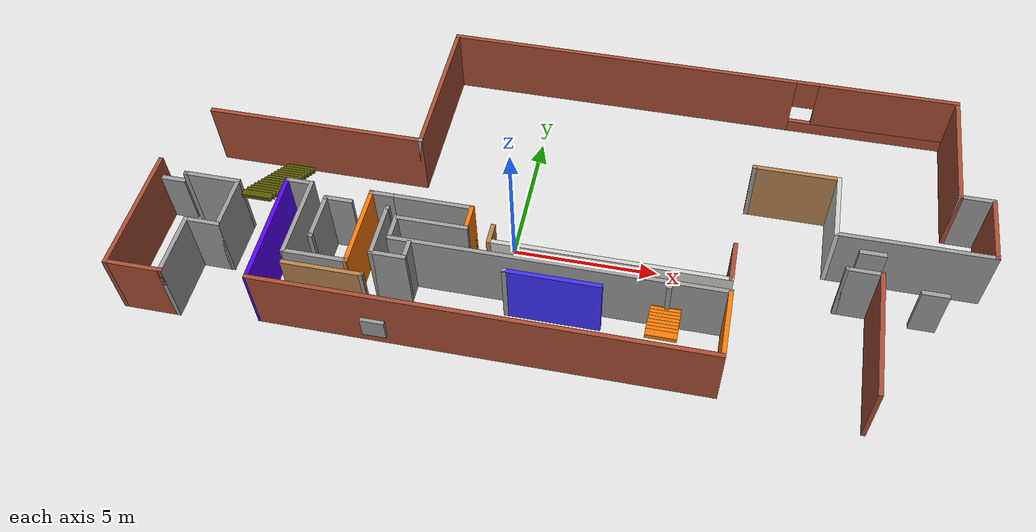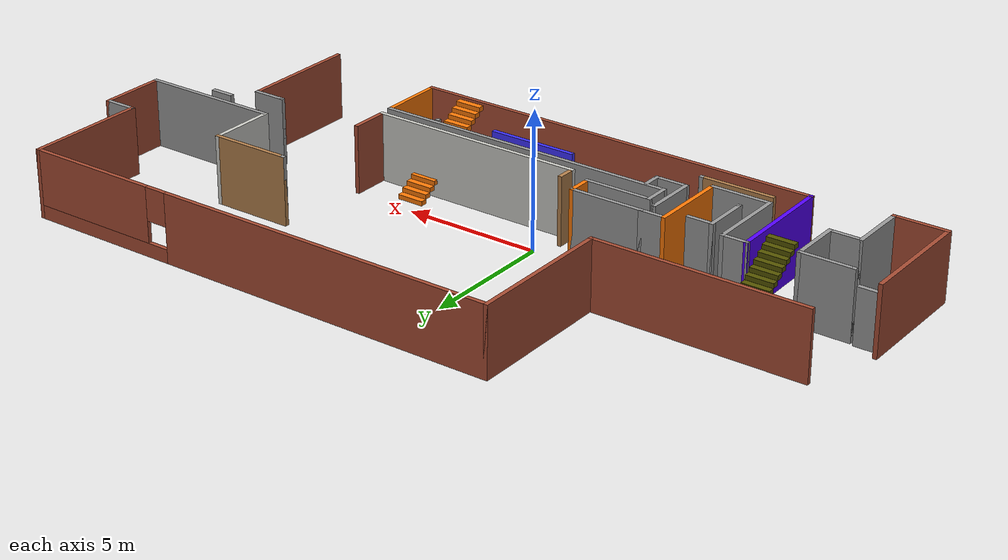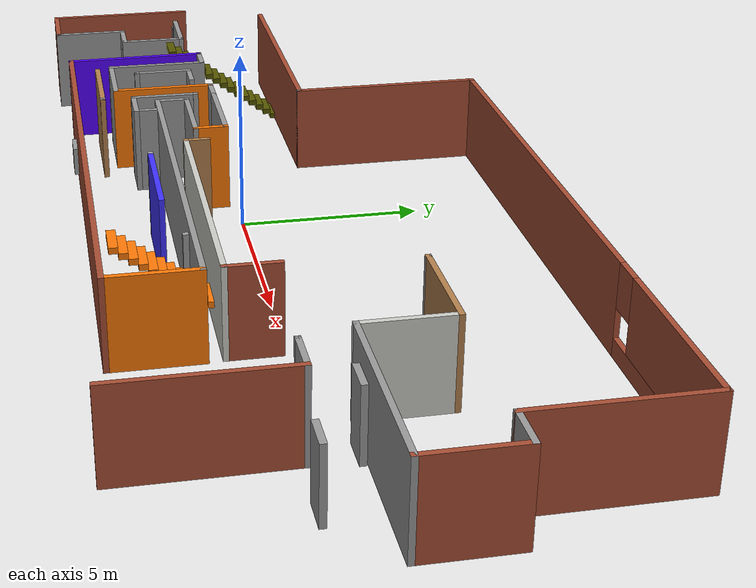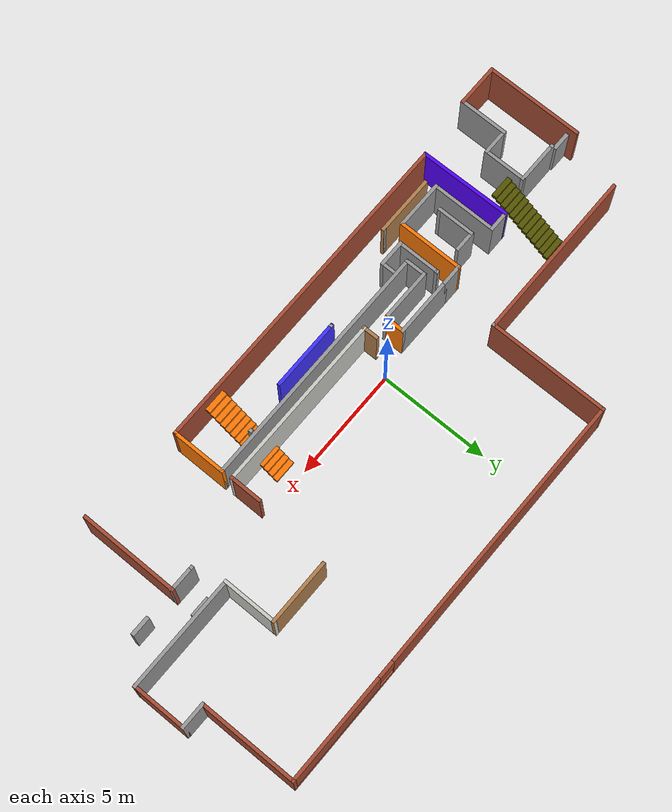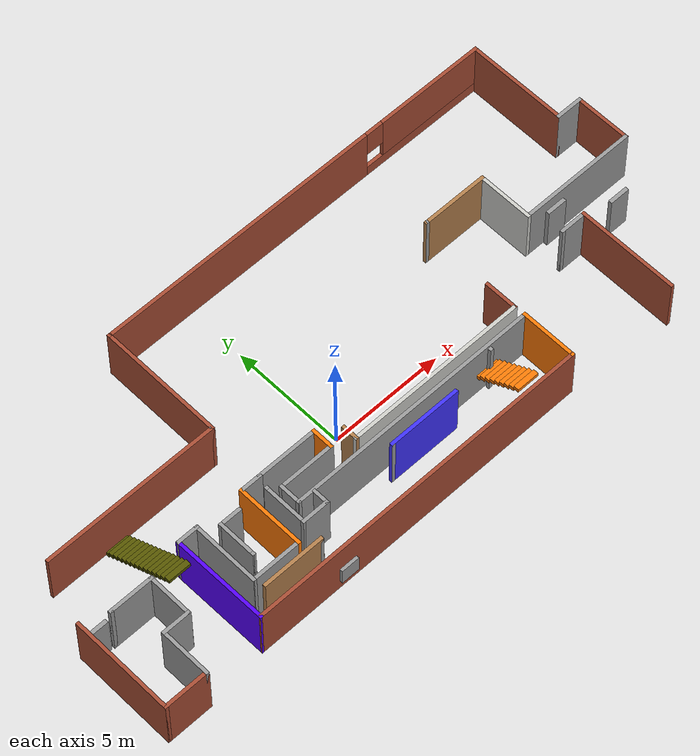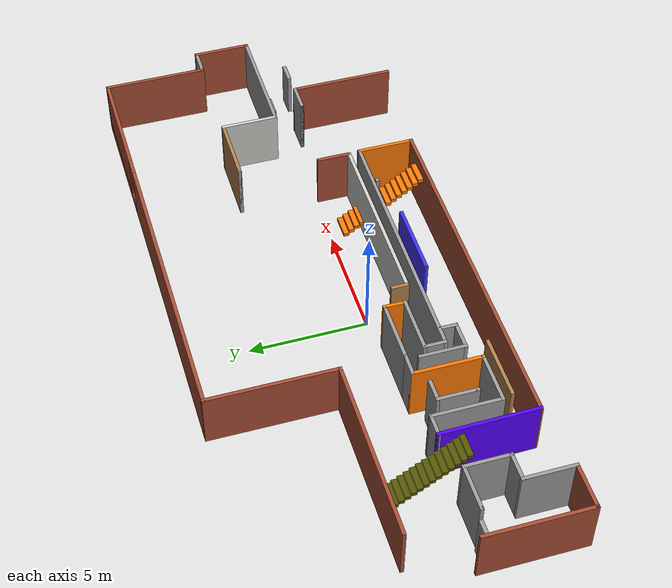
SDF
<sdf version="1.6">
 <model name="model">
  <pose>1.70279 1.4546 0 0 -0 0</pose>
  <link name="Door_2">
   <collision name="Door_2_Collision">
    <geometry><box><size>0.9 0.17 2</size></box></geometry>
    <pose>0 0 1 0 -0 0</pose>
   </collision>
   <visual name="Door_2_Visual">
    <pose>0 0 1 0 -0 0</pose>
    <geometry><box><size>0.9 0.17 2</size></box></geometry>
    <material>
     <script><uri>file://media/materials/scripts/gazebo.material</uri><name>Gazebo/Grey</name></script>
    </material>
   </visual>
   <pose>10.1664 -0.686476 0 0 -0 0</pose>
  </link>
  <link name="Door_3">
   <collision name="Door_3_Collision">
    <geometry><box><size>0.9 0.17 2</size></box></geometry>
    <pose>0 0 1 0 -0 0</pose>
   </collision>
   <visual name="Door_3_Visual">
    <pose>0 0 1 0 -0 0</pose>
    <geometry><box><size>0.9 0.17 2</size></box></geometry>
    <material>
     <script><uri>file://media/materials/scripts/gazebo.material</uri><name>Gazebo/Grey</name></script>
    </material>
   </visual>
   <pose>-13.5001 -2.06196 0 0 -0 0</pose>
  </link>
  <link name="Door_4">
   <collision name="Door_4_Collision">
    <geometry><box><size>0.9 0.17 2</size></box></geometry>
    <pose>0 0 1 0 -0 0</pose>
   </collision>
   <visual name="Door_4_Visual">
    <pose>0 0 1 0 -0 0</pose>
    <geometry><box><size>0.9 0.17 2</size></box></geometry>
    <material>
     <script><uri>file://media/materials/scripts/gazebo.material</uri><name>Gazebo/Grey</name></script>
    </material>
   </visual>
   <pose>12.1488 -1.9406 0 0 -0 0</pose>
  </link>
  <link name="Stairs_1">
   <visual name="Stairs_1_Visual_0">
    <pose>3.79721 -2.12127 0.083333 0 -0 0</pose>
    <geometry><box><size>1 0.233333 0.166667</size></box></geometry>
    <material>
     <script><uri>file://media/materials/scripts/gazebo.material</uri><name>Gazebo/Grey</name></script>
     <ambient>0.996078 0.47451 0.0196078 1</ambient>
    </material>
    <meta><layer>0</layer></meta>
   </visual>
   <collision name="Stairs_1_Collision_0">
    <geometry><box><size>1 0.233333 0.166667</size></box></geometry>
    <pose>3.79721 -2.12127 0.083333 0 -0 0</pose>
   </collision>
   <visual name="Stairs_1_Visual_1">
    <pose>3.79721 -2.3546 0.25 0 -0 0</pose>
    <geometry><box><size>1 0.233333 0.166667</size></box></geometry>
    <material>
     <script><uri>file://media/materials/scripts/gazebo.material</uri><name>Gazebo/Grey</name></script>
     <ambient>0.996078 0.47451 0.0196078 1</ambient>
    </material>
    <meta><layer>0</layer></meta>
   </visual>
   <collision name="Stairs_1_Collision_1">
    <geometry><box><size>1 0.233333 0.166667</size></box></geometry>
    <pose>3.79721 -2.3546 0.25 0 -0 0</pose>
   </collision>
   <visual name="Stairs_1_Visual_2">
    <pose>3.79721 -2.58793 0.416667 0 -0 0</pose>
    <geometry><box><size>1 0.233333 0.166667</size></box></geometry>
    <material>
     <script><uri>file://media/materials/scripts/gazebo.material</uri><name>Gazebo/Grey</name></script>
     <ambient>0.996078 0.47451 0.0196078 1</ambient>
    </material>
    <meta><layer>0</layer></meta>
   </visual>
   <collision name="Stairs_1_Collision_2">
    <geometry><box><size>1 0.233333 0.166667</size></box></geometry>
    <pose>3.79721 -2.58793 0.416667 0 -0 0</pose>
   </collision>
   <visual name="Stairs_1_Visual_3">
    <pose>3.79721 -2.82127 0.583333 0 -0 0</pose>
    <geometry><box><size>1 0.233333 0.166667</size></box></geometry>
    <material>
     <script><uri>file://media/materials/scripts/gazebo.material</uri><name>Gazebo/Grey</name></script>
     <ambient>0.996078 0.47451 0.0196078 1</ambient>
    </material>
    <meta><layer>0</layer></meta>
   </visual>
   <collision name="Stairs_1_Collision_3">
    <geometry><box><size>1 0.233333 0.166667</size></box></geometry>
    <pose>3.79721 -2.82127 0.583333 0 -0 0</pose>
   </collision>
   <visual name="Stairs_1_Visual_4">
    <pose>3.79721 -3.0546 0.75 0 -0 0</pose>
    <geometry><box><size>1 0.233333 0.166667</size></box></geometry>
    <material>
     <script><uri>file://media/materials/scripts/gazebo.material</uri><name>Gazebo/Grey</name></script>
     <ambient>0.996078 0.47451 0.0196078 1</ambient>
    </material>
    <meta><layer>0</layer></meta>
   </visual>
   <collision name="Stairs_1_Collision_4">
    <geometry><box><size>1 0.233333 0.166667</size></box></geometry>
    <pose>3.79721 -3.0546 0.75 0 -0 0</pose>
   </collision>
   <visual name="Stairs_1_Visual_5">
    <pose>3.79721 -3.28793 0.916667 0 -0 0</pose>
    <geometry><box><size>1 0.233333 0.166667</size></box></geometry>
    <material>
     <script><uri>file://media/materials/scripts/gazebo.material</uri><name>Gazebo/Grey</name></script>
     <ambient>0.996078 0.47451 0.0196078 1</ambient>
    </material>
    <meta><layer>0</layer></meta>
   </visual>
   <collision name="Stairs_1_Collision_5">
    <geometry><box><size>1 0.233333 0.166667</size></box></geometry>
    <pose>3.79721 -3.28793 0.916667 0 -0 0</pose>
   </collision>
   <visual name="Stairs_1_Visual_6">
    <pose>3.79721 -3.52127 1.08333 0 -0 0</pose>
    <geometry><box><size>1 0.233333 0.166667</size></box></geometry>
    <material>
     <script><uri>file://media/materials/scripts/gazebo.material</uri><name>Gazebo/Grey</name></script>
     <ambient>0.996078 0.47451 0.0196078 1</ambient>
    </material>
    <meta><layer>0</layer></meta>
   </visual>
   <collision name="Stairs_1_Collision_6">
    <geometry><box><size>1 0.233333 0.166667</size></box></geometry>
    <pose>3.79721 -3.52127 1.08333 0 -0 0</pose>
   </collision>
   <visual name="Stairs_1_Visual_7">
    <pose>3.79721 -3.7546 1.25 0 -0 0</pose>
    <geometry><box><size>1 0.233333 0.166667</size></box></geometry>
    <material>
     <script><uri>file://media/materials/scripts/gazebo.material</uri><name>Gazebo/Grey</name></script>
     <ambient>0.996078 0.47451 0.0196078 1</ambient>
    </material>
    <meta><layer>0</layer></meta>
   </visual>
   <collision name="Stairs_1_Collision_7">
    <geometry><box><size>1 0.233333 0.166667</size></box></geometry>
    <pose>3.79721 -3.7546 1.25 0 -0 0</pose>
   </collision>
   <visual name="Stairs_1_Visual_8">
    <pose>3.79721 -3.98793 1.41667 0 -0 0</pose>
    <geometry><box><size>1 0.233333 0.166667</size></box></geometry>
    <material>
     <script><uri>file://media/materials/scripts/gazebo.material</uri><name>Gazebo/Grey</name></script>
     <ambient>0.996078 0.47451 0.0196078 1</ambient>
    </material>
    <meta><layer>0</layer></meta>
   </visual>
   <collision name="Stairs_1_Collision_8">
    <geometry><box><size>1 0.233333 0.166667</size></box></geometry>
    <pose>3.79721 -3.98793 1.41667 0 -0 0</pose>
   </collision>
   <visual name="Stairs_1_Visual_9">
    <pose>3.79721 -4.22127 1.58333 0 -0 0</pose>
    <geometry><box><size>1 0.233333 0.166667</size></box></geometry>
    <material>
     <script><uri>file://media/materials/scripts/gazebo.material</uri><name>Gazebo/Grey</name></script>
     <ambient>0.996078 0.47451 0.0196078 1</ambient>
    </material>
    <meta><layer>0</layer></meta>
   </visual>
   <collision name="Stairs_1_Collision_9">
    <geometry><box><size>1 0.233333 0.166667</size></box></geometry>
    <pose>3.79721 -4.22127 1.58333 0 -0 0</pose>
   </collision>
   <visual name="Stairs_1_Visual_10">
    <pose>3.79721 -4.4546 1.75 0 -0 0</pose>
    <geometry><box><size>1 0.233333 0.166667</size></box></geometry>
    <material>
     <script><uri>file://media/materials/scripts/gazebo.material</uri><name>Gazebo/Grey</name></script>
     <ambient>0.996078 0.47451 0.0196078 1</ambient>
    </material>
    <meta><layer>0</layer></meta>
   </visual>
   <collision name="Stairs_1_Collision_10">
    <geometry><box><size>1 0.233333 0.166667</size></box></geometry>
    <pose>3.79721 -4.4546 1.75 0 -0 0</pose>
   </collision>
   <visual name="Stairs_1_Visual_11">
    <pose>3.79721 -4.68793 1.91667 0 -0 0</pose>
    <geometry><box><size>1 0.233333 0.166667</size></box></geometry>
    <material>
     <script><uri>file://media/materials/scripts/gazebo.material</uri><name>Gazebo/Grey</name></script>
     <ambient>0.996078 0.47451 0.0196078 1</ambient>
    </material>
    <meta><layer>0</layer></meta>
   </visual>
   <collision name="Stairs_1_Collision_11">
    <geometry><box><size>1 0.233333 0.166667</size></box></geometry>
    <pose>3.79721 -4.68793 1.91667 0 -0 0</pose>
   </collision>
   <visual name="Stairs_1_Visual_12">
    <pose>3.79721 -4.92127 2.08333 0 -0 0</pose>
    <geometry><box><size>1 0.233333 0.166667</size></box></geometry>
    <material>
     <script><uri>file://media/materials/scripts/gazebo.material</uri><name>Gazebo/Grey</name></script>
     <ambient>0.996078 0.47451 0.0196078 1</ambient>
    </material>
    <meta><layer>0</layer></meta>
   </visual>
   <collision name="Stairs_1_Collision_12">
    <geometry><box><size>1 0.233333 0.166667</size></box></geometry>
    <pose>3.79721 -4.92127 2.08333 0 -0 0</pose>
   </collision>
   <visual name="Stairs_1_Visual_13">
    <pose>3.79721 -5.1546 2.25 0 -0 0</pose>
    <geometry><box><size>1 0.233333 0.166667</size></box></geometry>
    <material>
     <script><uri>file://media/materials/scripts/gazebo.material</uri><name>Gazebo/Grey</name></script>
     <ambient>0.996078 0.47451 0.0196078 1</ambient>
    </material>
    <meta><layer>0</layer></meta>
   </visual>
   <collision name="Stairs_1_Collision_13">
    <geometry><box><size>1 0.233333 0.166667</size></box></geometry>
    <pose>3.79721 -5.1546 2.25 0 -0 0</pose>
   </collision>
   <visual name="Stairs_1_Visual_14">
    <pose>3.79721 -5.38793 2.41667 0 -0 0</pose>
    <geometry><box><size>1 0.233333 0.166667</size></box></geometry>
    <material>
     <script><uri>file://media/materials/scripts/gazebo.material</uri><name>Gazebo/Grey</name></script>
     <ambient>0.996078 0.47451 0.0196078 1</ambient>
    </material>
    <meta><layer>0</layer></meta>
   </visual>
   <collision name="Stairs_1_Collision_14">
    <geometry><box><size>1 0.233333 0.166667</size></box></geometry>
    <pose>3.79721 -5.38793 2.41667 0 -0 0</pose>
   </collision>
  </link>
  <link name="Stairs_2">
   <visual name="Stairs_2_Visual_0">
    <pose>-10.1827 0.74458 0.083333 0 -0 0</pose>
    <geometry><box><size>1 0.233333 0.166667</size></box></geometry>
    <material>
     <script><uri>file://media/materials/scripts/gazebo.material</uri><name>Gazebo/Grey</name></script>
     <ambient>0.333333 0.333333 0 1</ambient>
    </material>
    <meta><layer>0</layer></meta>
   </visual>
   <collision name="Stairs_2_Collision_0">
    <geometry><box><size>1 0.233333 0.166667</size></box></geometry>
    <pose>-10.1827 0.74458 0.083333 0 -0 0</pose>
   </collision>
   <visual name="Stairs_2_Visual_1">
    <pose>-10.1827 0.511247 0.25 0 -0 0</pose>
    <geometry><box><size>1 0.233333 0.166667</size></box></geometry>
    <material>
     <script><uri>file://media/materials/scripts/gazebo.material</uri><name>Gazebo/Grey</name></script>
     <ambient>0.333333 0.333333 0 1</ambient>
    </material>
    <meta><layer>0</layer></meta>
   </visual>
   <collision name="Stairs_2_Collision_1">
    <geometry><box><size>1 0.233333 0.166667</size></box></geometry>
    <pose>-10.1827 0.511247 0.25 0 -0 0</pose>
   </collision>
   <visual name="Stairs_2_Visual_2">
    <pose>-10.1827 0.277913 0.416667 0 -0 0</pose>
    <geometry><box><size>1 0.233333 0.166667</size></box></geometry>
    <material>
     <script><uri>file://media/materials/scripts/gazebo.material</uri><name>Gazebo/Grey</name></script>
     <ambient>0.333333 0.333333 0 1</ambient>
    </material>
    <meta><layer>0</layer></meta>
   </visual>
   <collision name="Stairs_2_Collision_2">
    <geometry><box><size>1 0.233333 0.166667</size></box></geometry>
    <pose>-10.1827 0.277913 0.416667 0 -0 0</pose>
   </collision>
   <visual name="Stairs_2_Visual_3">
    <pose>-10.1827 0.04458 0.583333 0 -0 0</pose>
    <geometry><box><size>1 0.233333 0.166667</size></box></geometry>
    <material>
     <script><uri>file://media/materials/scripts/gazebo.material</uri><name>Gazebo/Grey</name></script>
     <ambient>0.333333 0.333333 0 1</ambient>
    </material>
    <meta><layer>0</layer></meta>
   </visual>
   <collision name="Stairs_2_Collision_3">
    <geometry><box><size>1 0.233333 0.166667</size></box></geometry>
    <pose>-10.1827 0.04458 0.583333 0 -0 0</pose>
   </collision>
   <visual name="Stairs_2_Visual_4">
    <pose>-10.1827 -0.188753 0.75 0 -0 0</pose>
    <geometry><box><size>1 0.233333 0.166667</size></box></geometry>
    <material>
     <script><uri>file://media/materials/scripts/gazebo.material</uri><name>Gazebo/Grey</name></script>
     <ambient>0.333333 0.333333 0 1</ambient>
    </material>
    <meta><layer>0</layer></meta>
   </visual>
   <collision name="Stairs_2_Collision_4">
    <geometry><box><size>1 0.233333 0.166667</size></box></geometry>
    <pose>-10.1827 -0.188753 0.75 0 -0 0</pose>
   </collision>
   <visual name="Stairs_2_Visual_5">
    <pose>-10.1827 -0.422087 0.916667 0 -0 0</pose>
    <geometry><box><size>1 0.233333 0.166667</size></box></geometry>
    <material>
     <script><uri>file://media/materials/scripts/gazebo.material</uri><name>Gazebo/Grey</name></script>
     <ambient>0.333333 0.333333 0 1</ambient>
    </material>
    <meta><layer>0</layer></meta>
   </visual>
   <collision name="Stairs_2_Collision_5">
    <geometry><box><size>1 0.233333 0.166667</size></box></geometry>
    <pose>-10.1827 -0.422087 0.916667 0 -0 0</pose>
   </collision>
   <visual name="Stairs_2_Visual_6">
    <pose>-10.1827 -0.65542 1.08333 0 -0 0</pose>
    <geometry><box><size>1 0.233333 0.166667</size></box></geometry>
    <material>
     <script><uri>file://media/materials/scripts/gazebo.material</uri><name>Gazebo/Grey</name></script>
     <ambient>0.333333 0.333333 0 1</ambient>
    </material>
    <meta><layer>0</layer></meta>
   </visual>
   <collision name="Stairs_2_Collision_6">
    <geometry><box><size>1 0.233333 0.166667</size></box></geometry>
    <pose>-10.1827 -0.65542 1.08333 0 -0 0</pose>
   </collision>
   <visual name="Stairs_2_Visual_7">
    <pose>-10.1827 -0.888753 1.25 0 -0 0</pose>
    <geometry><box><size>1 0.233333 0.166667</size></box></geometry>
    <material>
     <script><uri>file://media/materials/scripts/gazebo.material</uri><name>Gazebo/Grey</name></script>
     <ambient>0.333333 0.333333 0 1</ambient>
    </material>
    <meta><layer>0</layer></meta>
   </visual>
   <collision name="Stairs_2_Collision_7">
    <geometry><box><size>1 0.233333 0.166667</size></box></geometry>
    <pose>-10.1827 -0.888753 1.25 0 -0 0</pose>
   </collision>
   <visual name="Stairs_2_Visual_8">
    <pose>-10.1827 -1.12209 1.41667 0 -0 0</pose>
    <geometry><box><size>1 0.233333 0.166667</size></box></geometry>
    <material>
     <script><uri>file://media/materials/scripts/gazebo.material</uri><name>Gazebo/Grey</name></script>
     <ambient>0.333333 0.333333 0 1</ambient>
    </material>
    <meta><layer>0</layer></meta>
   </visual>
   <collision name="Stairs_2_Collision_8">
    <geometry><box><size>1 0.233333 0.166667</size></box></geometry>
    <pose>-10.1827 -1.12209 1.41667 0 -0 0</pose>
   </collision>
   <visual name="Stairs_2_Visual_9">
    <pose>-10.1827 -1.35542 1.58333 0 -0 0</pose>
    <geometry><box><size>1 0.233333 0.166667</size></box></geometry>
    <material>
     <script><uri>file://media/materials/scripts/gazebo.material</uri><name>Gazebo/Grey</name></script>
     <ambient>0.333333 0.333333 0 1</ambient>
    </material>
    <meta><layer>0</layer></meta>
   </visual>
   <collision name="Stairs_2_Collision_9">
    <geometry><box><size>1 0.233333 0.166667</size></box></geometry>
    <pose>-10.1827 -1.35542 1.58333 0 -0 0</pose>
   </collision>
   <visual name="Stairs_2_Visual_10">
    <pose>-10.1827 -1.58875 1.75 0 -0 0</pose>
    <geometry><box><size>1 0.233333 0.166667</size></box></geometry>
    <material>
     <script><uri>file://media/materials/scripts/gazebo.material</uri><name>Gazebo/Grey</name></script>
     <ambient>0.333333 0.333333 0 1</ambient>
    </material>
    <meta><layer>0</layer></meta>
   </visual>
   <collision name="Stairs_2_Collision_10">
    <geometry><box><size>1 0.233333 0.166667</size></box></geometry>
    <pose>-10.1827 -1.58875 1.75 0 -0 0</pose>
   </collision>
   <visual name="Stairs_2_Visual_11">
    <pose>-10.1827 -1.82209 1.91667 0 -0 0</pose>
    <geometry><box><size>1 0.233333 0.166667</size></box></geometry>
    <material>
     <script><uri>file://media/materials/scripts/gazebo.material</uri><name>Gazebo/Grey</name></script>
     <ambient>0.333333 0.333333 0 1</ambient>
    </material>
    <meta><layer>0</layer></meta>
   </visual>
   <collision name="Stairs_2_Collision_11">
    <geometry><box><size>1 0.233333 0.166667</size></box></geometry>
    <pose>-10.1827 -1.82209 1.91667 0 -0 0</pose>
   </collision>
   <visual name="Stairs_2_Visual_12">
    <pose>-10.1827 -2.05542 2.08333 0 -0 0</pose>
    <geometry><box><size>1 0.233333 0.166667</size></box></geometry>
    <material>
     <script><uri>file://media/materials/scripts/gazebo.material</uri><name>Gazebo/Grey</name></script>
     <ambient>0.333333 0.333333 0 1</ambient>
    </material>
    <meta><layer>0</layer></meta>
   </visual>
   <collision name="Stairs_2_Collision_12">
    <geometry><box><size>1 0.233333 0.166667</size></box></geometry>
    <pose>-10.1827 -2.05542 2.08333 0 -0 0</pose>
   </collision>
   <visual name="Stairs_2_Visual_13">
    <pose>-10.1827 -2.28875 2.25 0 -0 0</pose>
    <geometry><box><size>1 0.233333 0.166667</size></box></geometry>
    <material>
     <script><uri>file://media/materials/scripts/gazebo.material</uri><name>Gazebo/Grey</name></script>
     <ambient>0.333333 0.333333 0 1</ambient>
    </material>
    <meta><layer>0</layer></meta>
   </visual>
   <collision name="Stairs_2_Collision_13">
    <geometry><box><size>1 0.233333 0.166667</size></box></geometry>
    <pose>-10.1827 -2.28875 2.25 0 -0 0</pose>
   </collision>
   <visual name="Stairs_2_Visual_14">
    <pose>-10.1827 -2.52209 2.41667 0 -0 0</pose>
    <geometry><box><size>1 0.233333 0.166667</size></box></geometry>
    <material>
     <script><uri>file://media/materials/scripts/gazebo.material</uri><name>Gazebo/Grey</name></script>
     <ambient>0.333333 0.333333 0 1</ambient>
    </material>
    <meta><layer>0</layer></meta>
   </visual>
   <collision name="Stairs_2_Collision_14">
    <geometry><box><size>1 0.233333 0.166667</size></box></geometry>
    <pose>-10.1827 -2.52209 2.41667 0 -0 0</pose>
   </collision>
  </link>
  <link name="Wall_10">
   <collision name="Wall_10_Collision">
    <geometry><box><size>2.5 0.15 2.5</size></box></geometry>
    <pose>0 0 1.25 0 -0 0</pose>
   </collision>
   <visual name="Wall_10_Visual">
    <pose>0 0 1.25 0 -0 0</pose>
    <geometry><box><size>2.5 0.15 2.5</size></box></geometry>
    <material>
     <script><uri>file://media/materials/scripts/gazebo.material</uri><name>Gazebo/Grey</name></script>
     <ambient>1 1 1 1</ambient>
    </material>
    <meta><layer>0</layer></meta>
   </visual>
   <pose>-4.18779 -2.5746 0 0 -0 3.14159</pose>
  </link>
  <link name="Wall_11">
   <collision name="Wall_11_Collision">
    <geometry><box><size>1 0.15 2.5</size></box></geometry>
    <pose>0 0 1.25 0 -0 0</pose>
   </collision>
   <visual name="Wall_11_Visual">
    <pose>0 0 1.25 0 -0 0</pose>
    <geometry><box><size>1 0.15 2.5</size></box></geometry>
    <material>
     <script><uri>file://media/materials/scripts/gazebo.material</uri><name>Gazebo/Grey</name></script>
     <ambient>1 1 1 1</ambient>
    </material>
    <meta><layer>0</layer></meta>
   </visual>
   <pose>-5.36279 -2.9996 0 0 0 -1.5708</pose>
  </link>
  <link name="Wall_12">
   <collision name="Wall_12_Collision">
    <geometry><box><size>11.25 0.15 2.5</size></box></geometry>
    <pose>0 0 1.25 0 -0 0</pose>
   </collision>
   <visual name="Wall_12_Visual">
    <pose>0 0 1.25 0 -0 0</pose>
    <geometry><box><size>11.25 0.15 2.5</size></box></geometry>
    <material>
     <script><uri>file://media/materials/scripts/gazebo.material</uri><name>Gazebo/Grey</name></script>
     <ambient>1 1 1 1</ambient>
    </material>
    <meta><layer>0</layer></meta>
   </visual>
   <pose>0.187206 -3.4246 0 0 -0 0</pose>
  </link>
  <link name="Wall_13">
   <collision name="Wall_13_Collision">
    <geometry><box><size>2.5 0.15 2.5</size></box></geometry>
    <pose>0 0 1.25 0 -0 0</pose>
   </collision>
   <visual name="Wall_13_Visual">
    <pose>0 0 1.25 0 -0 0</pose>
    <geometry><box><size>2.5 0.15 2.5</size></box></geometry>
    <material>
     <script><uri>file://media/materials/scripts/gazebo.material</uri><name>Gazebo/Grey</name></script>
     <ambient>0.996078 0.47451 0.0196078 1</ambient>
    </material>
    <meta><layer>0</layer></meta>
   </visual>
   <pose>5.73721 -4.5996 0 0 0 -1.5708</pose>
  </link>
  <link name="Wall_14">
   <collision name="Wall_14_Collision">
    <geometry><box><size>15.25 0.15 2.5</size></box></geometry>
    <pose>0 0 1.25 0 -0 0</pose>
   </collision>
   <visual name="Wall_14_Visual">
    <pose>0 0 1.25 0 -0 0</pose>
    <geometry><box><size>15.25 0.15 2.5</size></box></geometry>
    <material>
     <script><uri>file://media/materials/scripts/gazebo.material</uri><name>Gazebo/Bricks</name></script>
     <ambient>0.760784 0.662745 0.627451 1</ambient>
    </material>
    <meta><layer>0</layer></meta>
   </visual>
   <pose>-1.81279 -5.7746 0 0 -0 3.14159</pose>
  </link>
  <link name="Wall_15">
   <collision name="Wall_15_Collision">
    <geometry><box><size>4.20031 0.15 2.5</size></box></geometry>
    <pose>0 0 1.25 0 -0 0</pose>
   </collision>
   <visual name="Wall_15_Visual">
    <pose>0 0 1.25 0 -0 0</pose>
    <geometry><box><size>4.20031 0.15 2.5</size></box></geometry>
    <material>
     <script><uri>file://media/materials/scripts/gazebo.material</uri><name>Gazebo/Grey</name></script>
     <ambient>0.333333 0 1 1</ambient>
    </material>
    <meta><layer>0</layer></meta>
   </visual>
   <pose>-9.38779 -3.7496 0 0 -0 1.58314</pose>
  </link>
  <link name="Wall_16">
   <collision name="Wall_16_Collision">
    <geometry><box><size>0.15 0.15 2.5</size></box></geometry>
    <pose>0 0 1.25 0 -0 0</pose>
   </collision>
   <visual name="Wall_16_Visual">
    <pose>0 0 1.25 0 -0 0</pose>
    <geometry><box><size>0.15 0.15 2.5</size></box></geometry>
    <material>
     <script><uri>file://media/materials/scripts/gazebo.material</uri><name>Gazebo/Grey</name></script>
     <ambient>1 1 1 1</ambient>
    </material>
    <meta><layer>0</layer></meta>
   </visual>
   <pose>-9.41279 -1.7246 0 0 -0 0</pose>
  </link>
  <link name="Wall_18">
   <collision name="Wall_18_Collision">
    <geometry><box><size>0.15 0.15 2.5</size></box></geometry>
    <pose>0 0 1.25 0 -0 0</pose>
   </collision>
   <visual name="Wall_18_Visual">
    <pose>0 0 1.25 0 -0 0</pose>
    <geometry><box><size>0.15 0.15 2.5</size></box></geometry>
    <material>
     <script><uri>file://media/materials/scripts/gazebo.material</uri><name>Gazebo/Grey</name></script>
     <ambient>1 1 1 1</ambient>
    </material>
    <meta><layer>0</layer></meta>
   </visual>
   <pose>-3.01279 -1.7246 0 0 -0 0</pose>
  </link>
  <link name="Wall_20">
   <collision name="Wall_20_Collision">
    <geometry><box><size>1.5 0.15 2.5</size></box></geometry>
    <pose>0 0 1.25 0 -0 0</pose>
   </collision>
   <visual name="Wall_20_Visual">
    <pose>0 0 1.25 0 -0 0</pose>
    <geometry><box><size>1.5 0.15 2.5</size></box></geometry>
    <material>
     <script><uri>file://media/materials/scripts/gazebo.material</uri><name>Gazebo/Bricks</name></script>
     <ambient>1 1 1 1</ambient>
    </material>
    <meta><layer>0</layer></meta>
   </visual>
   <pose>5.69721 -2.2696 0 0 0 -1.5708</pose>
  </link>
  <link name="Wall_21">
   <collision name="Wall_21_Collision">
    <geometry><box><size>8 0.15 2.5</size></box></geometry>
    <pose>0 0 1.25 0 -0 0</pose>
   </collision>
   <visual name="Wall_21_Visual">
    <pose>0 0 1.25 0 -0 0</pose>
    <geometry><box><size>8 0.15 2.5</size></box></geometry>
    <material>
     <script><uri>file://media/materials/scripts/gazebo.material</uri><name>Gazebo/CeilingTiled</name></script>
     <ambient>0.435294 0.796078 0.67451 1</ambient>
    </material>
    <meta><layer>0</layer></meta>
   </visual>
   <pose>1.77221 -2.9446 0 0 -0 3.14159</pose>
  </link>
  <link name="Wall_22">
   <collision name="Wall_22_Collision">
    <geometry><box><size>0.75 0.15 2.5</size></box></geometry>
    <pose>0 0 1.25 0 -0 0</pose>
   </collision>
   <visual name="Wall_22_Visual">
    <pose>0 0 1.25 0 -0 0</pose>
    <geometry><box><size>0.75 0.15 2.5</size></box></geometry>
    <material>
     <script><uri>file://media/materials/scripts/gazebo.material</uri><name>Gazebo/Wood</name></script>
     <ambient>1 1 1 1</ambient>
    </material>
    <meta><layer>0</layer></meta>
   </visual>
   <pose>-2.15279 -2.6446 0 0 -0 1.5708</pose>
  </link>
  <link name="Wall_25">
   <collision name="Wall_25_Collision">
    <geometry><box><size>0.16 0.15 2.5</size></box></geometry>
    <pose>0 0 1.25 0 -0 0</pose>
   </collision>
   <visual name="Wall_25_Visual">
    <pose>0 0 1.25 0 -0 0</pose>
    <geometry><box><size>0.16 0.15 2.5</size></box></geometry>
    <material>
     <script><uri>file://media/materials/scripts/gazebo.material</uri><name>Gazebo/Grey</name></script>
     <ambient>1 1 1 1</ambient>
    </material>
    <meta><layer>0</layer></meta>
   </visual>
   <pose>3.8223 -3.6196 0 0 -0 0</pose>
  </link>
  <link name="Wall_27">
   <collision name="Wall_27_Collision">
    <geometry><box><size>1 0.15 2.5</size></box></geometry>
    <pose>0 0 1.25 0 -0 0</pose>
   </collision>
   <visual name="Wall_27_Visual">
    <pose>0 0 1.25 0 -0 0</pose>
    <geometry><box><size>1 0.15 2.5</size></box></geometry>
    <material>
     <script><uri>file://media/materials/scripts/gazebo.material</uri><name>Gazebo/Grey</name></script>
     <ambient>1 1 1 1</ambient>
    </material>
    <meta><layer>0</layer></meta>
   </visual>
   <pose>-7.46779 -2.2246 0 0 -0 3.14159</pose>
  </link>
  <link name="Wall_28">
   <collision name="Wall_28_Collision">
    <geometry><box><size>1.75 0.15 2.5</size></box></geometry>
    <pose>0 0 1.25 0 -0 0</pose>
   </collision>
   <visual name="Wall_28_Visual">
    <pose>0 0 1.25 0 -0 0</pose>
    <geometry><box><size>1.75 0.15 2.5</size></box></geometry>
    <material>
     <script><uri>file://media/materials/scripts/gazebo.material</uri><name>Gazebo/Grey</name></script>
     <ambient>1 1 1 1</ambient>
    </material>
    <meta><layer>0</layer></meta>
   </visual>
   <pose>-7.89279 -3.0246 0 0 0 -1.5708</pose>
  </link>
  <link name="Wall_29">
   <collision name="Wall_29_Collision">
    <geometry><box><size>0.15 0.15 2.5</size></box></geometry>
    <pose>0 0 1.25 0 -0 0</pose>
   </collision>
   <visual name="Wall_29_Visual">
    <pose>0 0 1.25 0 -0 0</pose>
    <geometry><box><size>0.15 0.15 2.5</size></box></geometry>
    <material>
     <script><uri>file://media/materials/scripts/gazebo.material</uri><name>Gazebo/Grey</name></script>
     <ambient>1 1 1 1</ambient>
    </material>
    <meta><layer>0</layer></meta>
   </visual>
   <pose>-7.89279 -3.8246 0 0 -0 0</pose>
  </link>
  <link name="Wall_3">
   <collision name="Wall_3_Collision">
    <geometry><box><size>1 0.15 2.5</size></box></geometry>
    <pose>0 0 1.25 0 -0 0</pose>
   </collision>
   <visual name="Wall_3_Visual">
    <pose>0 0 1.25 0 -0 0</pose>
    <geometry><box><size>1 0.15 2.5</size></box></geometry>
    <material>
     <script><uri>file://media/materials/scripts/gazebo.material</uri><name>Gazebo/Grey</name></script>
     <ambient>1 1 1 1</ambient>
    </material>
    <meta><layer>0</layer></meta>
   </visual>
   <pose>-8.98779 -1.7246 0 0 -0 0</pose>
  </link>
  <link name="Wall_31">
   <collision name="Wall_31_Collision">
    <geometry><box><size>3.25 0.15 2.5</size></box></geometry>
    <pose>0 0 1.25 0 -0 0</pose>
   </collision>
   <visual name="Wall_31_Visual">
    <pose>0 0 1.25 0 -0 0</pose>
    <geometry><box><size>3.25 0.15 2.5</size></box></geometry>
    <material>
     <script><uri>file://media/materials/scripts/gazebo.material</uri><name>Gazebo/Grey</name></script>
     <ambient>0.243137 0.192157 1 1</ambient>
    </material>
    <meta><layer>0</layer></meta>
   </visual>
   <pose>0.137206 -3.9946 0 0 -0 3.14159</pose>
  </link>
  <link name="Wall_32">
   <collision name="Wall_32_Collision">
    <geometry><box><size>0.16 0.15 2.5</size></box></geometry>
    <pose>0 0 1.25 0 -0 0</pose>
   </collision>
   <visual name="Wall_32_Visual">
    <pose>0 0 1.25 0 -0 0</pose>
    <geometry><box><size>0.16 0.15 2.5</size></box></geometry>
    <material>
     <script><uri>file://media/materials/scripts/gazebo.material</uri><name>Gazebo/Grey</name></script>
     <ambient>1 1 1 1</ambient>
    </material>
    <meta><layer>0</layer></meta>
   </visual>
   <pose>-1.40779 -3.9946 0 0 -0 0</pose>
  </link>
  <link name="Wall_35">
   <collision name="Wall_35_Collision">
    <geometry><box><size>2.75 0.15 2.5</size></box></geometry>
    <pose>0 0 1.25 0 -0 0</pose>
   </collision>
   <visual name="Wall_35_Visual">
    <pose>0 0 1.25 0 -0 0</pose>
    <geometry><box><size>2.75 0.15 2.5</size></box></geometry>
    <material>
     <script><uri>file://media/materials/scripts/gazebo.material</uri><name>Gazebo/Wood</name></script>
     <ambient>1 1 1 1</ambient>
    </material>
    <meta><layer>0</layer></meta>
   </visual>
   <pose>-7.11279 -5.0046 0 0 -0 0</pose>
  </link>
  <link name="Wall_36">
   <collision name="Wall_36_Collision">
    <geometry><box><size>0.15 0.15 2.5</size></box></geometry>
    <pose>0 0 1.25 0 -0 0</pose>
   </collision>
   <visual name="Wall_36_Visual">
    <pose>0 0 1.25 0 -0 0</pose>
    <geometry><box><size>0.15 0.15 2.5</size></box></geometry>
    <material>
     <script><uri>file://media/materials/scripts/gazebo.material</uri><name>Gazebo/Grey</name></script>
     <ambient>1 1 1 1</ambient>
    </material>
    <meta><layer>0</layer></meta>
   </visual>
   <pose>-5.81279 -5.0046 0 0 -0 0</pose>
  </link>
  <link name="Wall_38">
   <collision name="Wall_38_Collision">
    <geometry><box><size>0.75 0.15 2.5</size></box></geometry>
    <pose>0 0 1.25 0 -0 0</pose>
   </collision>
   <visual name="Wall_38_Visual">
    <pose>0 0 1.25 0 -0 0</pose>
    <geometry><box><size>0.75 0.15 2.5</size></box></geometry>
    <material>
     <script><uri>file://media/materials/scripts/gazebo.material</uri><name>Gazebo/Grey</name></script>
     <ambient>1 1 1 1</ambient>
    </material>
    <meta><layer>0</layer></meta>
   </visual>
   <pose>-4.67279 -3.8046 0 0 0 -1.5708</pose>
  </link>
  <link name="Wall_39">
   <collision name="Wall_39_Collision">
    <geometry><box><size>1.25 0.15 2.5</size></box></geometry>
    <pose>0 0 1.25 0 -0 0</pose>
   </collision>
   <visual name="Wall_39_Visual">
    <pose>0 0 1.25 0 -0 0</pose>
    <geometry><box><size>1.25 0.15 2.5</size></box></geometry>
    <material>
     <script><uri>file://media/materials/scripts/gazebo.material</uri><name>Gazebo/Grey</name></script>
     <ambient>1 1 1 1</ambient>
    </material>
    <meta><layer>0</layer></meta>
   </visual>
   <pose>-5.22279 -4.1046 0 0 -0 3.14159</pose>
  </link>
  <link name="Wall_4">
   <collision name="Wall_4_Collision">
    <geometry><box><size>3 0.15 2.5</size></box></geometry>
    <pose>0 0 1.25 0 -0 0</pose>
   </collision>
   <visual name="Wall_4_Visual">
    <pose>0 0 1.25 0 -0 0</pose>
    <geometry><box><size>3 0.15 2.5</size></box></geometry>
    <material>
     <script><uri>file://media/materials/scripts/gazebo.material</uri><name>Gazebo/Grey</name></script>
     <ambient>1 1 1 1</ambient>
    </material>
    <meta><layer>0</layer></meta>
   </visual>
   <pose>-8.56279 -3.1496 0 0 0 -1.5708</pose>
  </link>
  <link name="Wall_40">
   <collision name="Wall_40_Collision">
    <geometry><box><size>2 0.15 2.5</size></box></geometry>
    <pose>0 0 1.25 0 -0 0</pose>
   </collision>
   <visual name="Wall_40_Visual">
    <pose>0 0 1.25 0 -0 0</pose>
    <geometry><box><size>2 0.15 2.5</size></box></geometry>
    <material>
     <script><uri>file://media/materials/scripts/gazebo.material</uri><name>Gazebo/Grey</name></script>
     <ambient>1 1 1 1</ambient>
    </material>
    <meta><layer>0</layer></meta>
   </visual>
   <pose>-5.77279 -3.1796 0 0 -0 1.5708</pose>
  </link>
  <link name="Wall_41">
   <collision name="Wall_41_Collision">
    <geometry><box><size>0.16 0.15 2.5</size></box></geometry>
    <pose>0 0 1.25 0 -0 0</pose>
   </collision>
   <visual name="Wall_41_Visual">
    <pose>0 0 1.25 0 -0 0</pose>
    <geometry><box><size>0.16 0.15 2.5</size></box></geometry>
    <material>
     <script><uri>file://media/materials/scripts/gazebo.material</uri><name>Gazebo/Grey</name></script>
     <ambient>1 1 1 1</ambient>
    </material>
    <meta><layer>0</layer></meta>
   </visual>
   <pose>-5.76779 -2.2546 0 0 -0 0</pose>
  </link>
  <link name="Wall_47">
   <collision name="Wall_47_Collision">
    <geometry><box><size>4.5 0.15 2.5</size></box></geometry>
    <pose>0 0 1.25 0 -0 0</pose>
   </collision>
   <visual name="Wall_47_Visual">
    <pose>0 0 1.25 0 -0 0</pose>
    <geometry><box><size>4.5 0.15 2.5</size></box></geometry>
    <material>
     <script><uri>file://media/materials/scripts/gazebo.material</uri><name>Gazebo/Bricks</name></script>
     <ambient>1 1 1 1</ambient>
    </material>
    <meta><layer>0</layer></meta>
   </visual>
   <pose>10.3872 -4.0196 0 0 -0 1.5708</pose>
  </link>
  <link name="Wall_48">
   <collision name="Wall_48_Collision">
    <geometry><box><size>1.25 0.15 2.5</size></box></geometry>
    <pose>0 0 1.25 0 -0 0</pose>
   </collision>
   <visual name="Wall_48_Visual">
    <pose>0 0 1.25 0 -0 0</pose>
    <geometry><box><size>1.25 0.15 2.5</size></box></geometry>
    <material>
     <script><uri>file://media/materials/scripts/gazebo.material</uri><name>Gazebo/Grey</name></script>
     <ambient>1 1 1 1</ambient>
    </material>
    <meta><layer>0</layer></meta>
   </visual>
   <pose>9.83721 -1.8446 0 0 -0 3.14159</pose>
  </link>
  <link name="Wall_49">
   <collision name="Wall_49_Collision">
    <geometry><box><size>0.15 0.15 2.5</size></box></geometry>
    <pose>0 0 1.25 0 -0 0</pose>
   </collision>
   <visual name="Wall_49_Visual">
    <pose>0 0 1.25 0 -0 0</pose>
    <geometry><box><size>0.15 0.15 2.5</size></box></geometry>
    <material>
     <script><uri>file://media/materials/scripts/gazebo.material</uri><name>Gazebo/Grey</name></script>
     <ambient>1 1 1 1</ambient>
    </material>
    <meta><layer>0</layer></meta>
   </visual>
   <pose>9.28721 -1.8446 0 0 -0 0</pose>
  </link>
  <link name="Wall_5">
   <collision name="Wall_5_Collision">
    <geometry><box><size>2.25 0.15 2.5</size></box></geometry>
    <pose>0 0 1.25 0 -0 0</pose>
   </collision>
   <visual name="Wall_5_Visual">
    <pose>0 0 1.25 0 -0 0</pose>
    <geometry><box><size>2.25 0.15 2.5</size></box></geometry>
    <material>
     <script><uri>file://media/materials/scripts/gazebo.material</uri><name>Gazebo/Grey</name></script>
     <ambient>1 1 1 1</ambient>
    </material>
    <meta><layer>0</layer></meta>
   </visual>
   <pose>-7.51279 -4.5746 0 0 -0 0</pose>
  </link>
  <link name="Wall_51">
   <collision name="Wall_51_Collision">
    <geometry><box><size>4.5 0.15 2.5</size></box></geometry>
    <pose>0 0 1.25 0 -0 0</pose>
   </collision>
   <visual name="Wall_51_Visual">
    <pose>0 0 1.25 0 -0 0</pose>
    <geometry><box><size>4.5 0.15 2.5</size></box></geometry>
    <material>
     <script><uri>file://media/materials/scripts/gazebo.material</uri><name>Gazebo/Bricks</name></script>
     <ambient>1 1 1 1</ambient>
    </material>
    <meta><layer>0</layer></meta>
   </visual>
   <pose>-13.9728 -3.8896 0 0 0 -1.5708</pose>
  </link>
  <link name="Wall_52">
   <collision name="Wall_52_Collision">
    <geometry><box><size>2 0.15 2.5</size></box></geometry>
    <pose>0 0 1.25 0 -0 0</pose>
   </collision>
   <visual name="Wall_52_Visual">
    <pose>0 0 1.25 0 -0 0</pose>
    <geometry><box><size>2 0.15 2.5</size></box></geometry>
    <material>
     <script><uri>file://media/materials/scripts/gazebo.material</uri><name>Gazebo/Bricks</name></script>
     <ambient>1 1 1 1</ambient>
    </material>
    <meta><layer>0</layer></meta>
   </visual>
   <pose>-13.0478 -6.0646 0 0 -0 0</pose>
  </link>
  <link name="Wall_53">
   <collision name="Wall_53_Collision">
    <geometry><box><size>2.25 0.15 2.5</size></box></geometry>
    <pose>0 0 1.25 0 -0 0</pose>
   </collision>
   <visual name="Wall_53_Visual">
    <pose>0 0 1.25 0 -0 0</pose>
    <geometry><box><size>2.25 0.15 2.5</size></box></geometry>
    <material>
     <script><uri>file://media/materials/scripts/gazebo.material</uri><name>Gazebo/Grey</name></script>
     <ambient>1 1 1 1</ambient>
    </material>
    <meta><layer>0</layer></meta>
   </visual>
   <pose>-12.1228 -5.0146 0 0 -0 1.5708</pose>
  </link>
  <link name="Wall_54">
   <collision name="Wall_54_Collision">
    <geometry><box><size>1.25 0.15 2.5</size></box></geometry>
    <pose>0 0 1.25 0 -0 0</pose>
   </collision>
   <visual name="Wall_54_Visual">
    <pose>0 0 1.25 0 -0 0</pose>
    <geometry><box><size>1.25 0.15 2.5</size></box></geometry>
    <material>
     <script><uri>file://media/materials/scripts/gazebo.material</uri><name>Gazebo/Grey</name></script>
     <ambient>1 1 1 1</ambient>
    </material>
    <meta><layer>0</layer></meta>
   </visual>
   <pose>-11.5728 -3.9646 0 0 -0 0</pose>
  </link>
  <link name="Wall_55">
   <collision name="Wall_55_Collision">
    <geometry><box><size>2 0.15 2.5</size></box></geometry>
    <pose>0 0 1.25 0 -0 0</pose>
   </collision>
   <visual name="Wall_55_Visual">
    <pose>0 0 1.25 0 -0 0</pose>
    <geometry><box><size>2 0.15 2.5</size></box></geometry>
    <material>
     <script><uri>file://media/materials/scripts/gazebo.material</uri><name>Gazebo/Grey</name></script>
     <ambient>1 1 1 1</ambient>
    </material>
    <meta><layer>0</layer></meta>
   </visual>
   <pose>-11.0228 -3.0396 0 0 -0 1.5708</pose>
  </link>
  <link name="Wall_56">
   <collision name="Wall_56_Collision">
    <geometry><box><size>2 0.15 2.5</size></box></geometry>
    <pose>0 0 1.25 0 -0 0</pose>
   </collision>
   <visual name="Wall_56_Visual">
    <pose>0 0 1.25 0 -0 0</pose>
    <geometry><box><size>2 0.15 2.5</size></box></geometry>
    <material>
     <script><uri>file://media/materials/scripts/gazebo.material</uri><name>Gazebo/Grey</name></script>
     <ambient>1 1 1 1</ambient>
    </material>
    <meta><layer>0</layer></meta>
   </visual>
   <pose>-11.9478 -2.1146 0 0 -0 3.14159</pose>
  </link>
  <link name="Wall_57">
   <collision name="Wall_57_Collision">
    <geometry><box><size>0.15 0.15 2.5</size></box></geometry>
    <pose>0 0 1.25 0 -0 0</pose>
   </collision>
   <visual name="Wall_57_Visual">
    <pose>0 0 1.25 0 -0 0</pose>
    <geometry><box><size>0.15 0.15 2.5</size></box></geometry>
    <material>
     <script><uri>file://media/materials/scripts/gazebo.material</uri><name>Gazebo/Grey</name></script>
     <ambient>1 1 1 1</ambient>
    </material>
    <meta><layer>0</layer></meta>
   </visual>
   <pose>-12.8728 -2.1146 0 0 -0 0</pose>
  </link>
  <link name="Wall_6">
   <collision name="Wall_6_Collision">
    <geometry><box><size>3 0.15 2.5</size></box></geometry>
    <pose>0 0 1.25 0 -0 0</pose>
   </collision>
   <visual name="Wall_6_Visual">
    <pose>0 0 1.25 0 -0 0</pose>
    <geometry><box><size>3 0.15 2.5</size></box></geometry>
    <material>
     <script><uri>file://media/materials/scripts/gazebo.material</uri><name>Gazebo/Grey</name></script>
     <ambient>0.996078 0.47451 0.0196078 1</ambient>
    </material>
    <meta><layer>0</layer></meta>
   </visual>
   <pose>-6.46279 -3.1496 0 0 -0 1.5708</pose>
  </link>
  <link name="Wall_61">
   <collision name="Wall_61_Collision">
    <geometry><box><size>7.75 0.15 2.5</size></box></geometry>
    <pose>0 0 1.25 0 -0 0</pose>
   </collision>
   <visual name="Wall_61_Visual">
    <pose>0 0 1.25 0 -0 0</pose>
    <geometry><box><size>7.75 0.15 2.5</size></box></geometry>
    <material>
     <script><uri>file://media/materials/scripts/gazebo.material</uri><name>Gazebo/Bricks</name></script>
     <ambient>1 1 1 1</ambient>
    </material>
    <meta><layer>0</layer></meta>
   </visual>
   <pose>-9.27721 0.8446 0 0 -0 0</pose>
  </link>
  <link name="Wall_62">
   <collision name="Wall_62_Collision">
    <geometry><box><size>0.15 0.15 2.5</size></box></geometry>
    <pose>0 0 1.25 0 -0 0</pose>
   </collision>
   <visual name="Wall_62_Visual">
    <pose>0 0 1.25 0 -0 0</pose>
    <geometry><box><size>0.15 0.15 2.5</size></box></geometry>
    <material>
     <script><uri>file://media/materials/scripts/gazebo.material</uri><name>Gazebo/Grey</name></script>
     <ambient>1 1 1 1</ambient>
    </material>
    <meta><layer>0</layer></meta>
   </visual>
   <pose>-5.47721 0.8446 0 0 -0 0</pose>
  </link>
  <link name="Wall_64">
   <collision name="Wall_64_Collision">
    <geometry><box><size>5.5 0.15 2.5</size></box></geometry>
    <pose>0 0 1.25 0 -0 0</pose>
   </collision>
   <visual name="Wall_64_Visual">
    <pose>0 0 1.25 0 -0 0</pose>
    <geometry><box><size>5.5 0.15 2.5</size></box></geometry>
    <material>
     <script><uri>file://media/materials/scripts/gazebo.material</uri><name>Gazebo/Bricks</name></script>
     <ambient>1 1 1 1</ambient>
    </material>
    <meta><layer>0</layer></meta>
   </visual>
   <pose>-5.47721 3.5196 0 0 -0 1.5708</pose>
  </link>
  <link name="Wall_65">
   <pose>3.69779 6.1946 0 0 -0 0</pose>
   <visual name="Wall_65_Visual_0">
    <pose>-2.88525 0 1.25 0 -0 0</pose>
    <geometry><box><size>12.7295 0.15 2.5</size></box></geometry>
    <material>
     <script><uri>file://media/materials/scripts/gazebo.material</uri><name>Gazebo/Bricks</name></script>
     <ambient>1 1 1 1</ambient>
    </material>
    <meta><layer>0</layer></meta>
   </visual>
   <collision name="Wall_65_Collision_0">
    <geometry><box><size>12.7295 0.15 2.5</size></box></geometry>
    <pose>-2.88525 0 1.25 0 -0 0</pose>
   </collision>
   <visual name="Wall_65_Visual_1">
    <pose>6.36475 0 0.25 0 -0 0</pose>
    <geometry><box><size>5.77051 0.15 0.5</size></box></geometry>
    <material>
     <script><uri>file://media/materials/scripts/gazebo.material</uri><name>Gazebo/Bricks</name></script>
     <ambient>1 1 1 1</ambient>
    </material>
    <meta><layer>0</layer></meta>
   </visual>
   <collision name="Wall_65_Collision_1">
    <geometry><box><size>5.77051 0.15 0.5</size></box></geometry>
    <pose>6.36475 0 0.25 0 -0 0</pose>
   </collision>
   <visual name="Wall_65_Visual_2">
    <pose>6.76475 0 1.5 0 -0 0</pose>
    <geometry><box><size>4.97051 0.15 2</size></box></geometry>
    <material>
     <script><uri>file://media/materials/scripts/gazebo.material</uri><name>Gazebo/Bricks</name></script>
     <ambient>1 1 1 1</ambient>
    </material>
    <meta><layer>0</layer></meta>
   </visual>
   <collision name="Wall_65_Collision_2">
    <geometry><box><size>4.97051 0.15 2</size></box></geometry>
    <pose>6.76475 0 1.5 0 -0 0</pose>
   </collision>
   <visual name="Wall_65_Visual_3">
    <pose>3.87949 0 1.9 0 -0 0</pose>
    <geometry><box><size>0.8 0.15 1.2</size></box></geometry>
    <material>
     <script><uri>file://media/materials/scripts/gazebo.material</uri><name>Gazebo/Bricks</name></script>
     <ambient>1 1 1 1</ambient>
    </material>
    <meta><layer>0</layer></meta>
   </visual>
   <collision name="Wall_65_Collision_3">
    <geometry><box><size>0.8 0.15 1.2</size></box></geometry>
    <pose>3.87949 0 1.9 0 -0 0</pose>
   </collision>
  </link>
  <link name="Wall_66">
   <collision name="Wall_66_Collision">
    <geometry><box><size>4.5 0.15 2.5</size></box></geometry>
    <pose>0 0 1.25 0 -0 0</pose>
   </collision>
   <visual name="Wall_66_Visual">
    <pose>0 0 1.25 0 -0 0</pose>
    <geometry><box><size>4.5 0.15 2.5</size></box></geometry>
    <material>
     <script><uri>file://media/materials/scripts/gazebo.material</uri><name>Gazebo/Bricks</name></script>
     <ambient>1 1 1 1</ambient>
    </material>
    <meta><layer>0</layer></meta>
   </visual>
   <pose>12.8728 4.0196 0 0 0 -1.5708</pose>
  </link>
  <link name="Wall_67">
   <collision name="Wall_67_Collision">
    <geometry><box><size>1.25 0.15 2.5</size></box></geometry>
    <pose>0 0 1.25 0 -0 0</pose>
   </collision>
   <visual name="Wall_67_Visual">
    <pose>0 0 1.25 0 -0 0</pose>
    <geometry><box><size>1.25 0.15 2.5</size></box></geometry>
    <material>
     <script><uri>file://media/materials/scripts/gazebo.material</uri><name>Gazebo/Grey</name></script>
     <ambient>1 1 1 1</ambient>
    </material>
    <meta><layer>0</layer></meta>
   </visual>
   <pose>13.4228 1.8446 0 0 -0 0</pose>
  </link>
  <link name="Wall_68">
   <collision name="Wall_68_Collision">
    <geometry><box><size>2.5 0.15 2.5</size></box></geometry>
    <pose>0 0 1.25 0 -0 0</pose>
   </collision>
   <visual name="Wall_68_Visual">
    <pose>0 0 1.25 0 -0 0</pose>
    <geometry><box><size>2.5 0.15 2.5</size></box></geometry>
    <material>
     <script><uri>file://media/materials/scripts/gazebo.material</uri><name>Gazebo/Bricks</name></script>
     <ambient>1 1 1 1</ambient>
    </material>
    <meta><layer>0</layer></meta>
   </visual>
   <pose>13.9728 0.6696 0 0 0 -1.5708</pose>
  </link>
  <link name="Wall_69">
   <collision name="Wall_69_Collision">
    <geometry><box><size>5.25 0.15 2.5</size></box></geometry>
    <pose>0 0 1.25 0 -0 0</pose>
   </collision>
   <visual name="Wall_69_Visual">
    <pose>0 0 1.25 0 -0 0</pose>
    <geometry><box><size>5.25 0.15 2.5</size></box></geometry>
    <material>
     <script><uri>file://media/materials/scripts/gazebo.material</uri><name>Gazebo/Grey</name></script>
     <ambient>1 1 1 1</ambient>
    </material>
    <meta><layer>0</layer></meta>
   </visual>
   <pose>11.4228 -0.5054 0 0 -0 3.14159</pose>
  </link>
  <link name="Wall_7">
   <collision name="Wall_7_Collision">
    <geometry><box><size>1 0.15 2.5</size></box></geometry>
    <pose>0 0 1.25 0 -0 0</pose>
   </collision>
   <visual name="Wall_7_Visual">
    <pose>0 0 1.25 0 -0 0</pose>
    <geometry><box><size>1 0.15 2.5</size></box></geometry>
    <material>
     <script><uri>file://media/materials/scripts/gazebo.material</uri><name>Gazebo/Grey</name></script>
     <ambient>1 1 1 1</ambient>
    </material>
    <meta><layer>0</layer></meta>
   </visual>
   <pose>-6.03779 -1.7246 0 0 -0 0</pose>
  </link>
  <link name="Wall_70">
   <collision name="Wall_70_Collision">
    <geometry><box><size>2.5 0.15 2.5</size></box></geometry>
    <pose>0 0 1.25 0 -0 0</pose>
   </collision>
   <visual name="Wall_70_Visual">
    <pose>0 0 1.25 0 -0 0</pose>
    <geometry><box><size>2.5 0.15 2.5</size></box></geometry>
    <material>
     <script><uri>file://media/materials/scripts/gazebo.material</uri><name>Gazebo/CeilingTiled</name></script>
     <ambient>1 1 1 1</ambient>
    </material>
    <meta><layer>0</layer></meta>
   </visual>
   <pose>8.87279 0.6696 0 0 -0 1.5708</pose>
  </link>
  <link name="Wall_71">
   <collision name="Wall_71_Collision">
    <geometry><box><size>3 0.15 2.5</size></box></geometry>
    <pose>0 0 1.25 0 -0 0</pose>
   </collision>
   <visual name="Wall_71_Visual">
    <pose>0 0 1.25 0 -0 0</pose>
    <geometry><box><size>3 0.15 2.5</size></box></geometry>
    <material>
     <script><uri>file://media/materials/scripts/gazebo.material</uri><name>Gazebo/Wood</name></script>
     <ambient>1 1 1 1</ambient>
    </material>
    <meta><layer>0</layer></meta>
   </visual>
   <pose>7.44779 1.8446 0 0 -0 3.14159</pose>
  </link>
  <link name="Wall_72">
   <collision name="Wall_72_Collision">
    <geometry><box><size>0.15 0.15 2.5</size></box></geometry>
    <pose>0 0 1.25 0 -0 0</pose>
   </collision>
   <visual name="Wall_72_Visual">
    <pose>0 0 1.25 0 -0 0</pose>
    <geometry><box><size>0.15 0.15 2.5</size></box></geometry>
    <material>
     <script><uri>file://media/materials/scripts/gazebo.material</uri><name>Gazebo/Grey</name></script>
     <ambient>1 1 1 1</ambient>
    </material>
    <meta><layer>0</layer></meta>
   </visual>
   <pose>6.02279 1.8446 0 0 -0 0</pose>
  </link>
  <link name="Wall_8">
   <collision name="Wall_8_Collision">
    <geometry><box><size>2.75 0.15 2.5</size></box></geometry>
    <pose>0 0 1.25 0 -0 0</pose>
   </collision>
   <visual name="Wall_8_Visual">
    <pose>0 0 1.25 0 -0 0</pose>
    <geometry><box><size>2.75 0.15 2.5</size></box></geometry>
    <material>
     <script><uri>file://media/materials/scripts/gazebo.material</uri><name>Gazebo/Grey</name></script>
     <ambient>1 1 1 1</ambient>
    </material>
    <meta><layer>0</layer></meta>
   </visual>
   <pose>-4.31279 -1.7246 0 0 -0 0</pose>
  </link>
  <link name="Wall_9">
   <collision name="Wall_9_Collision">
    <geometry><box><size>1 0.15 2.5</size></box></geometry>
    <pose>0 0 1.25 0 -0 0</pose>
   </collision>
   <visual name="Wall_9_Visual">
    <pose>0 0 1.25 0 -0 0</pose>
    <geometry><box><size>1 0.15 2.5</size></box></geometry>
    <material>
     <script><uri>file://media/materials/scripts/gazebo.material</uri><name>Gazebo/Grey</name></script>
     <ambient>0.996078 0.47451 0.0196078 1</ambient>
    </material>
    <meta><layer>0</layer></meta>
   </visual>
   <pose>-3.01279 -2.1496 0 0 0 -1.5708</pose>
  </link>
  <link name="Window_0">
   <collision name="Window_0_Collision">
    <geometry><box><size>0.8 0.17 0.8</size></box></geometry>
    <pose>0 0 0.4 0 -0 0</pose>
   </collision>
   <visual name="Window_0_Visual">
    <pose>0 0 0.4 0 -0 0</pose>
    <geometry><box><size>0.8 0.17 0.8</size></box></geometry>
    <material>
     <script><uri>file://media/materials/scripts/gazebo.material</uri><name>Gazebo/Grey</name></script>
    </material>
   </visual>
   <pose>-5.34279 -5.8946 0.5 0 -0 0</pose>
  </link>
  <static>1</static>
 </model>
</sdf>
